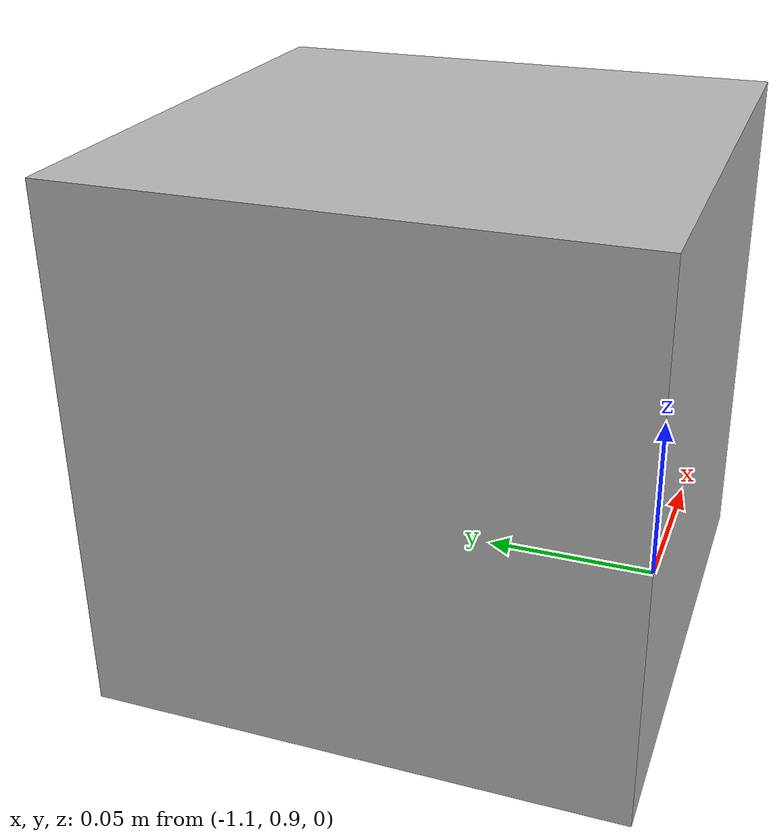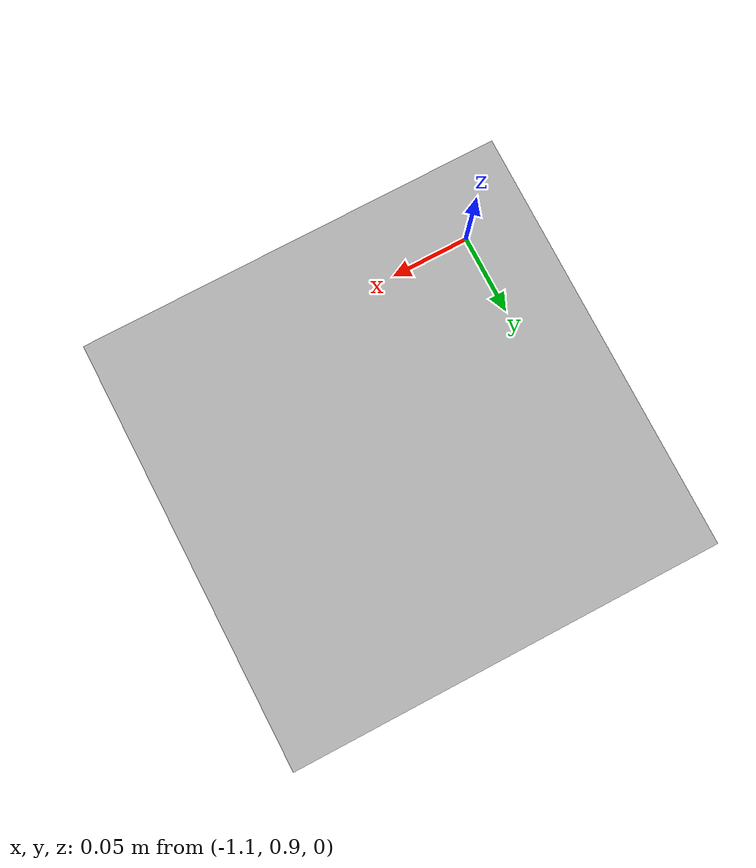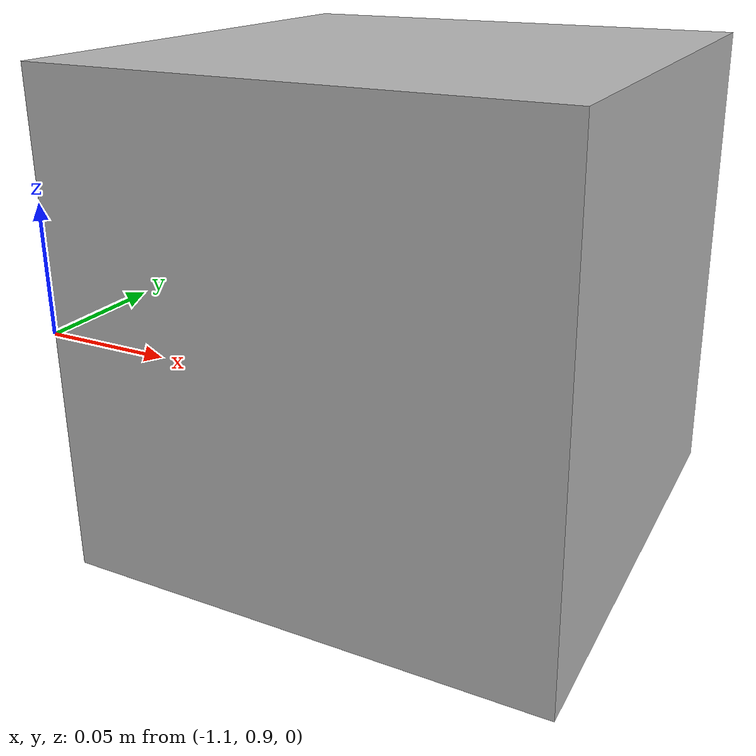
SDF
<?xml version="1.0" ?>
<sdf version="1.6">
<model name="box">
      <pose>-1 1 0 0 0 0</pose>
      <link name="link">
        <collision name="collision">
          <geometry>
            <box>
              <size>0.2 0.2 0.2</size>
            </box>
          </geometry>
        </collision>

        <visual name="visual">
          <geometry>
            <box>
              <size>0.2 0.2 0.2</size>
            </box>
          </geometry>
        </visual>
      </link>

<!-- A plugin -->
      <plugin name="push_animate" filename="libanimated_box.so"/>
    </model>

</sdf>
